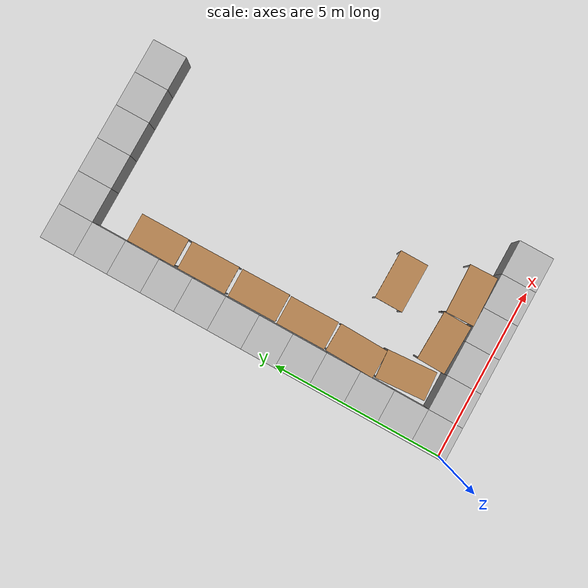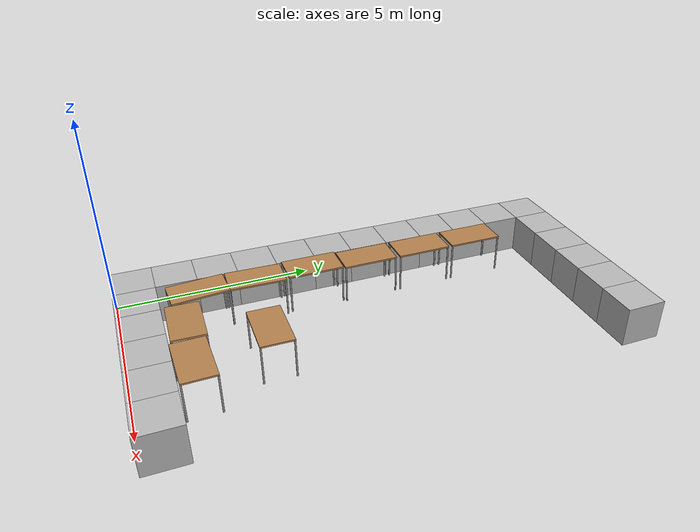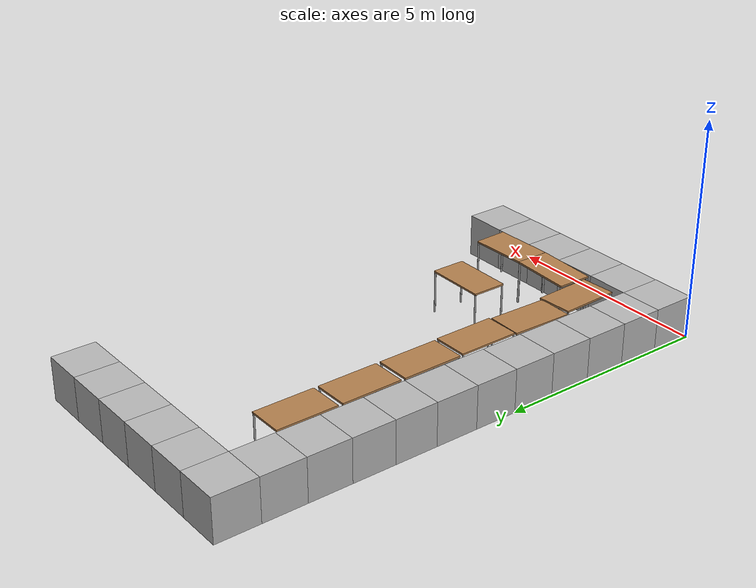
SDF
<sdf version="1.6">
 <world name="default">
  <model name="box_0_0">
   <pose>0.5 0.5 0.5 0 -0 0</pose>
   <static>1</static>
   <link name="link">
    <collision name="collision"><geometry><box><size>1 1 1</size></box></geometry></collision>
    <visual name="visual"><geometry><box><size>1 1 1</size></box></geometry></visual>
   </link>
  </model>
  <model name="box_0_1">
   <pose>0.5 1.5 0.5 0 -0 0</pose>
   <static>1</static>
   <link name="link">
    <collision name="collision"><geometry><box><size>1 1 1</size></box></geometry></collision>
    <visual name="visual"><geometry><box><size>1 1 1</size></box></geometry></visual>
   </link>
  </model>
  <model name="box_0_2">
   <pose>0.5 2.5 0.5 0 -0 0</pose>
   <static>1</static>
   <link name="link">
    <collision name="collision"><geometry><box><size>1 1 1</size></box></geometry></collision>
    <visual name="visual"><geometry><box><size>1 1 1</size></box></geometry></visual>
   </link>
  </model>
  <model name="box_0_3">
   <pose>0.5 3.5 0.5 0 -0 0</pose>
   <static>1</static>
   <link name="link">
    <collision name="collision"><geometry><box><size>1 1 1</size></box></geometry></collision>
    <visual name="visual"><geometry><box><size>1 1 1</size></box></geometry></visual>
   </link>
  </model>
  <model name="box_0_4">
   <pose>0.5 4.5 0.5 0 -0 0</pose>
   <static>1</static>
   <link name="link">
    <collision name="collision"><geometry><box><size>1 1 1</size></box></geometry></collision>
    <visual name="visual"><geometry><box><size>1 1 1</size></box></geometry></visual>
   </link>
  </model>
  <model name="box_0_5">
   <pose>0.5 5.5 0.5 0 -0 0</pose>
   <static>1</static>
   <link name="link">
    <collision name="collision"><geometry><box><size>1 1 1</size></box></geometry></collision>
    <visual name="visual"><geometry><box><size>1 1 1</size></box></geometry></visual>
   </link>
  </model>
  <model name="box_0_6">
   <pose>0.5 6.5 0.5 0 -0 0</pose>
   <static>1</static>
   <link name="link">
    <collision name="collision"><geometry><box><size>1 1 1</size></box></geometry></collision>
    <visual name="visual"><geometry><box><size>1 1 1</size></box></geometry></visual>
   </link>
  </model>
  <model name="box_0_7">
   <pose>0.5 7.5 0.5 0 -0 0</pose>
   <static>1</static>
   <link name="link">
    <collision name="collision"><geometry><box><size>1 1 1</size></box></geometry></collision>
    <visual name="visual"><geometry><box><size>1 1 1</size></box></geometry></visual>
   </link>
  </model>
  <model name="box_0_8">
   <pose>0.5 8.5 0.5 0 -0 0</pose>
   <static>1</static>
   <link name="link">
    <collision name="collision"><geometry><box><size>1 1 1</size></box></geometry></collision>
    <visual name="visual"><geometry><box><size>1 1 1</size></box></geometry></visual>
   </link>
  </model>
  <model name="box_0_9">
   <pose>0.5 9.5 0.5 0 -0 0</pose>
   <static>1</static>
   <link name="link">
    <collision name="collision"><geometry><box><size>1 1 1</size></box></geometry></collision>
    <visual name="visual"><geometry><box><size>1 1 1</size></box></geometry></visual>
   </link>
  </model>
  <model name="box_0_10">
   <pose>0.5 10.5 0.5 0 -0 0</pose>
   <static>1</static>
   <link name="link">
    <collision name="collision"><geometry><box><size>1 1 1</size></box></geometry></collision>
    <visual name="visual"><geometry><box><size>1 1 1</size></box></geometry></visual>
   </link>
  </model>
  <model name="box_0_11">
   <pose>0.5 11.5 0.5 0 -0 0</pose>
   <static>1</static>
   <link name="link">
    <collision name="collision"><geometry><box><size>1 1 1</size></box></geometry></collision>
    <visual name="visual"><geometry><box><size>1 1 1</size></box></geometry></visual>
   </link>
  </model>
  <model name="box_1_0">
   <pose>1.5 0.5 0.5 0 -0 0</pose>
   <static>1</static>
   <link name="link">
    <collision name="collision"><geometry><box><size>1 1 1</size></box></geometry></collision>
    <visual name="visual"><geometry><box><size>1 1 1</size></box></geometry></visual>
   </link>
  </model>
  <model name="box_1_11">
   <pose>1.5 11.5 0.5 0 -0 0</pose>
   <static>1</static>
   <link name="link">
    <collision name="collision"><geometry><box><size>1 1 1</size></box></geometry></collision>
    <visual name="visual"><geometry><box><size>1 1 1</size></box></geometry></visual>
   </link>
  </model>
  <model name="box_2_0">
   <pose>2.5 0.5 0.5 0 -0 0</pose>
   <static>1</static>
   <link name="link">
    <collision name="collision"><geometry><box><size>1 1 1</size></box></geometry></collision>
    <visual name="visual"><geometry><box><size>1 1 1</size></box></geometry></visual>
   </link>
  </model>
  <model name="box_2_11">
   <pose>2.5 11.5 0.5 0 -0 0</pose>
   <static>1</static>
   <link name="link">
    <collision name="collision"><geometry><box><size>1 1 1</size></box></geometry></collision>
    <visual name="visual"><geometry><box><size>1 1 1</size></box></geometry></visual>
   </link>
  </model>
  <model name="box_3_0">
   <pose>3.5 0.5 0.5 0 -0 0</pose>
   <static>1</static>
   <link name="link">
    <collision name="collision"><geometry><box><size>1 1 1</size></box></geometry></collision>
    <visual name="visual"><geometry><box><size>1 1 1</size></box></geometry></visual>
   </link>
  </model>
  <model name="box_3_11">
   <pose>3.5 11.5 0.5 0 -0 0</pose>
   <static>1</static>
   <link name="link">
    <collision name="collision"><geometry><box><size>1 1 1</size></box></geometry></collision>
    <visual name="visual"><geometry><box><size>1 1 1</size></box></geometry></visual>
   </link>
  </model>
  <model name="box_4_0">
   <pose>4.5 0.5 0.5 0 -0 0</pose>
   <static>1</static>
   <link name="link">
    <collision name="collision"><geometry><box><size>1 1 1</size></box></geometry></collision>
    <visual name="visual"><geometry><box><size>1 1 1</size></box></geometry></visual>
   </link>
  </model>
  <model name="box_4_11">
   <pose>4.5 11.5 0.5 0 -0 0</pose>
   <static>1</static>
   <link name="link">
    <collision name="collision"><geometry><box><size>1 1 1</size></box></geometry></collision>
    <visual name="visual"><geometry><box><size>1 1 1</size></box></geometry></visual>
   </link>
  </model>
  <model name="box_5_0">
   <pose>5.5 0.5 0.5 0 -0 0</pose>
   <static>1</static>
   <link name="link">
    <collision name="collision"><geometry><box><size>1 1 1</size></box></geometry></collision>
    <visual name="visual"><geometry><box><size>1 1 1</size></box></geometry></visual>
   </link>
  </model>
  <model name="box_5_11">
   <pose>5.5 11.5 0.5 0 -0 0</pose>
   <static>1</static>
   <link name="link">
    <collision name="collision"><geometry><box><size>1 1 1</size></box></geometry></collision>
    <visual name="visual"><geometry><box><size>1 1 1</size></box></geometry></visual>
   </link>
  </model>
  <model name="table_0_clone_clone_1">
   <static>0</static>
   <link name="link">
    <collision name="surface">
     <pose>0 0 1 0 -0 0</pose>
     <geometry><box><size>1.5 0.8 0.03</size></box></geometry>
     <surface><friction><ode><mu>0.6</mu><mu2>0.6</mu2></ode></friction></surface>
    </collision>
    <visual name="visual1">
     <pose>0 0 1 0 -0 0</pose>
     <geometry><box><size>1.4 0.8 0.04</size></box></geometry>
     <material>
      <script><uri>file://media/materials/scripts/gazebo.material</uri><name>Gazebo/Wood</name></script>
     </material>
    </visual>
    <collision name="front_left_leg">
     <pose>0.68 0.38 0.5 0 -0 0</pose>
     <geometry><cylinder><radius>0.02</radius><length>1</length></cylinder></geometry>
    </collision>
    <visual name="front_left_leg">
     <pose>0.68 0.38 0.5 0 -0 0</pose>
     <geometry><cylinder><radius>0.02</radius><length>1</length></cylinder></geometry>
     <material>
      <script><uri>file://media/materials/scripts/gazebo.material</uri><name>Gazebo/Grey</name></script>
     </material>
    </visual>
    <collision name="front_right_leg">
     <pose>0.68 -0.38 0.5 0 -0 0</pose>
     <geometry><cylinder><radius>0.02</radius><length>1</length></cylinder></geometry>
    </collision>
    <visual name="front_right_leg">
     <pose>0.68 -0.38 0.5 0 -0 0</pose>
     <geometry><cylinder><radius>0.02</radius><length>1</length></cylinder></geometry>
     <material>
      <script><uri>file://media/materials/scripts/gazebo.material</uri><name>Gazebo/Grey</name></script>
     </material>
    </visual>
    <collision name="back_right_leg">
     <pose>-0.68 -0.38 0.5 0 -0 0</pose>
     <geometry><cylinder><radius>0.02</radius><length>1</length></cylinder></geometry>
    </collision>
    <visual name="back_right_leg">
     <pose>-0.68 -0.38 0.5 0 -0 0</pose>
     <geometry><cylinder><radius>0.02</radius><length>1</length></cylinder></geometry>
     <material>
      <script><uri>file://media/materials/scripts/gazebo.material</uri><name>Gazebo/Grey</name></script>
     </material>
    </visual>
    <collision name="back_left_leg">
     <pose>-0.68 0.38 0.5 0 -0 0</pose>
     <geometry><cylinder><radius>0.02</radius><length>1</length></cylinder></geometry>
    </collision>
    <visual name="back_left_leg">
     <pose>-0.68 0.38 0.5 0 -0 0</pose>
     <geometry><cylinder><radius>0.02</radius><length>1</length></cylinder></geometry>
     <material>
      <script><uri>file://media/materials/scripts/gazebo.material</uri><name>Gazebo/Grey</name></script>
     </material>
    </visual>
    <inertial>
     <inertia><ixx>1</ixx><ixy>0</ixy><ixz>0</ixz><iyy>1</iyy><iyz>0</iyz><izz>1</izz></inertia>
     <mass>1</mass>
    </inertial>
   </link>
   <pose>1.49275 1.95318 0.015881 0.002019 0.021604 -1.50473</pose>
  </model>
  <model name="table_0_clone_clone_2">
   <static>0</static>
   <link name="link">
    <collision name="surface">
     <pose>0 0 1 0 -0 0</pose>
     <geometry><box><size>1.5 0.8 0.03</size></box></geometry>
     <surface><friction><ode><mu>0.6</mu><mu2>0.6</mu2></ode></friction></surface>
    </collision>
    <visual name="visual1">
     <pose>0 0 1 0 -0 0</pose>
     <geometry><box><size>1.4 0.8 0.04</size></box></geometry>
     <material>
      <script><uri>file://media/materials/scripts/gazebo.material</uri><name>Gazebo/Wood</name></script>
     </material>
    </visual>
    <collision name="front_left_leg">
     <pose>0.68 0.38 0.5 0 -0 0</pose>
     <geometry><cylinder><radius>0.02</radius><length>1</length></cylinder></geometry>
    </collision>
    <visual name="front_left_leg">
     <pose>0.68 0.38 0.5 0 -0 0</pose>
     <geometry><cylinder><radius>0.02</radius><length>1</length></cylinder></geometry>
     <material>
      <script><uri>file://media/materials/scripts/gazebo.material</uri><name>Gazebo/Grey</name></script>
     </material>
    </visual>
    <collision name="front_right_leg">
     <pose>0.68 -0.38 0.5 0 -0 0</pose>
     <geometry><cylinder><radius>0.02</radius><length>1</length></cylinder></geometry>
    </collision>
    <visual name="front_right_leg">
     <pose>0.68 -0.38 0.5 0 -0 0</pose>
     <geometry><cylinder><radius>0.02</radius><length>1</length></cylinder></geometry>
     <material>
      <script><uri>file://media/materials/scripts/gazebo.material</uri><name>Gazebo/Grey</name></script>
     </material>
    </visual>
    <collision name="back_right_leg">
     <pose>-0.68 -0.38 0.5 0 -0 0</pose>
     <geometry><cylinder><radius>0.02</radius><length>1</length></cylinder></geometry>
    </collision>
    <visual name="back_right_leg">
     <pose>-0.68 -0.38 0.5 0 -0 0</pose>
     <geometry><cylinder><radius>0.02</radius><length>1</length></cylinder></geometry>
     <material>
      <script><uri>file://media/materials/scripts/gazebo.material</uri><name>Gazebo/Grey</name></script>
     </material>
    </visual>
    <collision name="back_left_leg">
     <pose>-0.68 0.38 0.5 0 -0 0</pose>
     <geometry><cylinder><radius>0.02</radius><length>1</length></cylinder></geometry>
    </collision>
    <visual name="back_left_leg">
     <pose>-0.68 0.38 0.5 0 -0 0</pose>
     <geometry><cylinder><radius>0.02</radius><length>1</length></cylinder></geometry>
     <material>
      <script><uri>file://media/materials/scripts/gazebo.material</uri><name>Gazebo/Grey</name></script>
     </material>
    </visual>
    <inertial>
     <inertia><ixx>1</ixx><ixy>0</ixy><ixz>0</ixz><iyy>1</iyy><iyz>0</iyz><izz>1</izz></inertia>
     <mass>1</mass>
    </inertial>
   </link>
   <pose>1.42119 3.346 -1e-06 -3e-06 0 -1.59927</pose>
  </model>
  <model name="table_0_clone_clone_2_clone">
   <static>0</static>
   <link name="link">
    <collision name="surface">
     <pose>0 0 1 0 -0 0</pose>
     <geometry><box><size>1.5 0.8 0.03</size></box></geometry>
     <surface><friction><ode><mu>0.6</mu><mu2>0.6</mu2></ode></friction></surface>
    </collision>
    <visual name="visual1">
     <pose>0 0 1 0 -0 0</pose>
     <geometry><box><size>1.4 0.8 0.04</size></box></geometry>
     <material>
      <script><uri>file://media/materials/scripts/gazebo.material</uri><name>Gazebo/Wood</name></script>
     </material>
    </visual>
    <collision name="front_left_leg">
     <pose>0.68 0.38 0.5 0 -0 0</pose>
     <geometry><cylinder><radius>0.02</radius><length>1</length></cylinder></geometry>
    </collision>
    <visual name="front_left_leg">
     <pose>0.68 0.38 0.5 0 -0 0</pose>
     <geometry><cylinder><radius>0.02</radius><length>1</length></cylinder></geometry>
     <material>
      <script><uri>file://media/materials/scripts/gazebo.material</uri><name>Gazebo/Grey</name></script>
     </material>
    </visual>
    <collision name="front_right_leg">
     <pose>0.68 -0.38 0.5 0 -0 0</pose>
     <geometry><cylinder><radius>0.02</radius><length>1</length></cylinder></geometry>
    </collision>
    <visual name="front_right_leg">
     <pose>0.68 -0.38 0.5 0 -0 0</pose>
     <geometry><cylinder><radius>0.02</radius><length>1</length></cylinder></geometry>
     <material>
      <script><uri>file://media/materials/scripts/gazebo.material</uri><name>Gazebo/Grey</name></script>
     </material>
    </visual>
    <collision name="back_right_leg">
     <pose>-0.68 -0.38 0.5 0 -0 0</pose>
     <geometry><cylinder><radius>0.02</radius><length>1</length></cylinder></geometry>
    </collision>
    <visual name="back_right_leg">
     <pose>-0.68 -0.38 0.5 0 -0 0</pose>
     <geometry><cylinder><radius>0.02</radius><length>1</length></cylinder></geometry>
     <material>
      <script><uri>file://media/materials/scripts/gazebo.material</uri><name>Gazebo/Grey</name></script>
     </material>
    </visual>
    <collision name="back_left_leg">
     <pose>-0.68 0.38 0.5 0 -0 0</pose>
     <geometry><cylinder><radius>0.02</radius><length>1</length></cylinder></geometry>
    </collision>
    <visual name="back_left_leg">
     <pose>-0.68 0.38 0.5 0 -0 0</pose>
     <geometry><cylinder><radius>0.02</radius><length>1</length></cylinder></geometry>
     <material>
      <script><uri>file://media/materials/scripts/gazebo.material</uri><name>Gazebo/Grey</name></script>
     </material>
    </visual>
    <inertial>
     <inertia><ixx>1</ixx><ixy>0</ixy><ixz>0</ixz><iyy>1</iyy><iyz>0</iyz><izz>1</izz></inertia>
     <mass>1</mass>
    </inertial>
   </link>
   <pose>1.43437 4.80851 0.029983 -1.8e-05 -1.9e-05 -1.5659</pose>
  </model>
  <model name="table_0_clone_clone_2_clone_0">
   <static>0</static>
   <link name="link">
    <collision name="surface">
     <pose>0 0 1 0 -0 0</pose>
     <geometry><box><size>1.5 0.8 0.03</size></box></geometry>
     <surface><friction><ode><mu>0.6</mu><mu2>0.6</mu2></ode></friction></surface>
    </collision>
    <visual name="visual1">
     <pose>0 0 1 0 -0 0</pose>
     <geometry><box><size>1.4 0.8 0.04</size></box></geometry>
     <material>
      <script><uri>file://media/materials/scripts/gazebo.material</uri><name>Gazebo/Wood</name></script>
     </material>
    </visual>
    <collision name="front_left_leg">
     <pose>0.68 0.38 0.5 0 -0 0</pose>
     <geometry><cylinder><radius>0.02</radius><length>1</length></cylinder></geometry>
    </collision>
    <visual name="front_left_leg">
     <pose>0.68 0.38 0.5 0 -0 0</pose>
     <geometry><cylinder><radius>0.02</radius><length>1</length></cylinder></geometry>
     <material>
      <script><uri>file://media/materials/scripts/gazebo.material</uri><name>Gazebo/Grey</name></script>
     </material>
    </visual>
    <collision name="front_right_leg">
     <pose>0.68 -0.38 0.5 0 -0 0</pose>
     <geometry><cylinder><radius>0.02</radius><length>1</length></cylinder></geometry>
    </collision>
    <visual name="front_right_leg">
     <pose>0.68 -0.38 0.5 0 -0 0</pose>
     <geometry><cylinder><radius>0.02</radius><length>1</length></cylinder></geometry>
     <material>
      <script><uri>file://media/materials/scripts/gazebo.material</uri><name>Gazebo/Grey</name></script>
     </material>
    </visual>
    <collision name="back_right_leg">
     <pose>-0.68 -0.38 0.5 0 -0 0</pose>
     <geometry><cylinder><radius>0.02</radius><length>1</length></cylinder></geometry>
    </collision>
    <visual name="back_right_leg">
     <pose>-0.68 -0.38 0.5 0 -0 0</pose>
     <geometry><cylinder><radius>0.02</radius><length>1</length></cylinder></geometry>
     <material>
      <script><uri>file://media/materials/scripts/gazebo.material</uri><name>Gazebo/Grey</name></script>
     </material>
    </visual>
    <collision name="back_left_leg">
     <pose>-0.68 0.38 0.5 0 -0 0</pose>
     <geometry><cylinder><radius>0.02</radius><length>1</length></cylinder></geometry>
    </collision>
    <visual name="back_left_leg">
     <pose>-0.68 0.38 0.5 0 -0 0</pose>
     <geometry><cylinder><radius>0.02</radius><length>1</length></cylinder></geometry>
     <material>
      <script><uri>file://media/materials/scripts/gazebo.material</uri><name>Gazebo/Grey</name></script>
     </material>
    </visual>
    <inertial>
     <inertia><ixx>1</ixx><ixy>0</ixy><ixz>0</ixz><iyy>1</iyy><iyz>0</iyz><izz>1</izz></inertia>
     <mass>1</mass>
    </inertial>
   </link>
   <pose>1.44052 6.25894 -3.1e-05 -3e-06 9e-06 -1.56498</pose>
  </model>
  <model name="table_0_clone_clone_2_clone_1">
   <static>0</static>
   <link name="link">
    <collision name="surface">
     <pose>0 0 1 0 -0 0</pose>
     <geometry><box><size>1.5 0.8 0.03</size></box></geometry>
     <surface><friction><ode><mu>0.6</mu><mu2>0.6</mu2></ode></friction></surface>
    </collision>
    <visual name="visual1">
     <pose>0 0 1 0 -0 0</pose>
     <geometry><box><size>1.4 0.8 0.04</size></box></geometry>
     <material>
      <script><uri>file://media/materials/scripts/gazebo.material</uri><name>Gazebo/Wood</name></script>
     </material>
    </visual>
    <collision name="front_left_leg">
     <pose>0.68 0.38 0.5 0 -0 0</pose>
     <geometry><cylinder><radius>0.02</radius><length>1</length></cylinder></geometry>
    </collision>
    <visual name="front_left_leg">
     <pose>0.68 0.38 0.5 0 -0 0</pose>
     <geometry><cylinder><radius>0.02</radius><length>1</length></cylinder></geometry>
     <material>
      <script><uri>file://media/materials/scripts/gazebo.material</uri><name>Gazebo/Grey</name></script>
     </material>
    </visual>
    <collision name="front_right_leg">
     <pose>0.68 -0.38 0.5 0 -0 0</pose>
     <geometry><cylinder><radius>0.02</radius><length>1</length></cylinder></geometry>
    </collision>
    <visual name="front_right_leg">
     <pose>0.68 -0.38 0.5 0 -0 0</pose>
     <geometry><cylinder><radius>0.02</radius><length>1</length></cylinder></geometry>
     <material>
      <script><uri>file://media/materials/scripts/gazebo.material</uri><name>Gazebo/Grey</name></script>
     </material>
    </visual>
    <collision name="back_right_leg">
     <pose>-0.68 -0.38 0.5 0 -0 0</pose>
     <geometry><cylinder><radius>0.02</radius><length>1</length></cylinder></geometry>
    </collision>
    <visual name="back_right_leg">
     <pose>-0.68 -0.38 0.5 0 -0 0</pose>
     <geometry><cylinder><radius>0.02</radius><length>1</length></cylinder></geometry>
     <material>
      <script><uri>file://media/materials/scripts/gazebo.material</uri><name>Gazebo/Grey</name></script>
     </material>
    </visual>
    <collision name="back_left_leg">
     <pose>-0.68 0.38 0.5 0 -0 0</pose>
     <geometry><cylinder><radius>0.02</radius><length>1</length></cylinder></geometry>
    </collision>
    <visual name="back_left_leg">
     <pose>-0.68 0.38 0.5 0 -0 0</pose>
     <geometry><cylinder><radius>0.02</radius><length>1</length></cylinder></geometry>
     <material>
      <script><uri>file://media/materials/scripts/gazebo.material</uri><name>Gazebo/Grey</name></script>
     </material>
    </visual>
    <inertial>
     <inertia><ixx>1</ixx><ixy>0</ixy><ixz>0</ixz><iyy>1</iyy><iyz>0</iyz><izz>1</izz></inertia>
     <mass>1</mass>
    </inertial>
   </link>
   <pose>1.43271 7.75893 -0.000706 0 0 -1.56495</pose>
  </model>
  <model name="table_0_clone_clone_2_clone_1_clone">
   <static>0</static>
   <link name="link">
    <collision name="surface">
     <pose>0 0 1 0 -0 0</pose>
     <geometry><box><size>1.5 0.8 0.03</size></box></geometry>
     <surface><friction><ode><mu>0.6</mu><mu2>0.6</mu2></ode></friction></surface>
    </collision>
    <visual name="visual1">
     <pose>0 0 1 0 -0 0</pose>
     <geometry><box><size>1.4 0.8 0.04</size></box></geometry>
     <material>
      <script><uri>file://media/materials/scripts/gazebo.material</uri><name>Gazebo/Wood</name></script>
     </material>
    </visual>
    <collision name="front_left_leg">
     <pose>0.68 0.38 0.5 0 -0 0</pose>
     <geometry><cylinder><radius>0.02</radius><length>1</length></cylinder></geometry>
    </collision>
    <visual name="front_left_leg">
     <pose>0.68 0.38 0.5 0 -0 0</pose>
     <geometry><cylinder><radius>0.02</radius><length>1</length></cylinder></geometry>
     <material>
      <script><uri>file://media/materials/scripts/gazebo.material</uri><name>Gazebo/Grey</name></script>
     </material>
    </visual>
    <collision name="front_right_leg">
     <pose>0.68 -0.38 0.5 0 -0 0</pose>
     <geometry><cylinder><radius>0.02</radius><length>1</length></cylinder></geometry>
    </collision>
    <visual name="front_right_leg">
     <pose>0.68 -0.38 0.5 0 -0 0</pose>
     <geometry><cylinder><radius>0.02</radius><length>1</length></cylinder></geometry>
     <material>
      <script><uri>file://media/materials/scripts/gazebo.material</uri><name>Gazebo/Grey</name></script>
     </material>
    </visual>
    <collision name="back_right_leg">
     <pose>-0.68 -0.38 0.5 0 -0 0</pose>
     <geometry><cylinder><radius>0.02</radius><length>1</length></cylinder></geometry>
    </collision>
    <visual name="back_right_leg">
     <pose>-0.68 -0.38 0.5 0 -0 0</pose>
     <geometry><cylinder><radius>0.02</radius><length>1</length></cylinder></geometry>
     <material>
      <script><uri>file://media/materials/scripts/gazebo.material</uri><name>Gazebo/Grey</name></script>
     </material>
    </visual>
    <collision name="back_left_leg">
     <pose>-0.68 0.38 0.5 0 -0 0</pose>
     <geometry><cylinder><radius>0.02</radius><length>1</length></cylinder></geometry>
    </collision>
    <visual name="back_left_leg">
     <pose>-0.68 0.38 0.5 0 -0 0</pose>
     <geometry><cylinder><radius>0.02</radius><length>1</length></cylinder></geometry>
     <material>
      <script><uri>file://media/materials/scripts/gazebo.material</uri><name>Gazebo/Grey</name></script>
     </material>
    </visual>
    <inertial>
     <inertia><ixx>1</ixx><ixy>0</ixy><ixz>0</ixz><iyy>1</iyy><iyz>0</iyz><izz>1</izz></inertia>
     <mass>1</mass>
    </inertial>
   </link>
   <pose>1.42679 9.26055 -2e-06 0 0 -1.56904</pose>
  </model>
  <model name="table_clone_0_clone">
   <static>0</static>
   <link name="link">
    <collision name="surface">
     <pose>0 0 1 0 -0 0</pose>
     <geometry><box><size>1.5 0.8 0.03</size></box></geometry>
     <surface><friction><ode><mu>0.6</mu><mu2>0.6</mu2></ode></friction></surface>
    </collision>
    <visual name="visual1">
     <pose>0 0 1 0 -0 0</pose>
     <geometry><box><size>1.4 0.8 0.04</size></box></geometry>
     <material>
      <script><uri>file://media/materials/scripts/gazebo.material</uri><name>Gazebo/Wood</name></script>
     </material>
    </visual>
    <collision name="front_left_leg">
     <pose>0.68 0.38 0.5 0 -0 0</pose>
     <geometry><cylinder><radius>0.02</radius><length>1</length></cylinder></geometry>
    </collision>
    <visual name="front_left_leg">
     <pose>0.68 0.38 0.5 0 -0 0</pose>
     <geometry><cylinder><radius>0.02</radius><length>1</length></cylinder></geometry>
     <material>
      <script><uri>file://media/materials/scripts/gazebo.material</uri><name>Gazebo/Grey</name></script>
     </material>
    </visual>
    <collision name="front_right_leg">
     <pose>0.68 -0.38 0.5 0 -0 0</pose>
     <geometry><cylinder><radius>0.02</radius><length>1</length></cylinder></geometry>
    </collision>
    <visual name="front_right_leg">
     <pose>0.68 -0.38 0.5 0 -0 0</pose>
     <geometry><cylinder><radius>0.02</radius><length>1</length></cylinder></geometry>
     <material>
      <script><uri>file://media/materials/scripts/gazebo.material</uri><name>Gazebo/Grey</name></script>
     </material>
    </visual>
    <collision name="back_right_leg">
     <pose>-0.68 -0.38 0.5 0 -0 0</pose>
     <geometry><cylinder><radius>0.02</radius><length>1</length></cylinder></geometry>
    </collision>
    <visual name="back_right_leg">
     <pose>-0.68 -0.38 0.5 0 -0 0</pose>
     <geometry><cylinder><radius>0.02</radius><length>1</length></cylinder></geometry>
     <material>
      <script><uri>file://media/materials/scripts/gazebo.material</uri><name>Gazebo/Grey</name></script>
     </material>
    </visual>
    <collision name="back_left_leg">
     <pose>-0.68 0.38 0.5 0 -0 0</pose>
     <geometry><cylinder><radius>0.02</radius><length>1</length></cylinder></geometry>
    </collision>
    <visual name="back_left_leg">
     <pose>-0.68 0.38 0.5 0 -0 0</pose>
     <geometry><cylinder><radius>0.02</radius><length>1</length></cylinder></geometry>
     <material>
      <script><uri>file://media/materials/scripts/gazebo.material</uri><name>Gazebo/Grey</name></script>
     </material>
    </visual>
    <inertial>
     <inertia><ixx>1</ixx><ixy>0</ixy><ixz>0</ixz><iyy>1</iyy><iyz>0</iyz><izz>1</izz></inertia>
     <mass>1</mass>
    </inertial>
   </link>
   <pose>3.55881 3.19191 -3e-06 3e-06 -3e-06 -0.007666</pose>
  </model>
  <model name="table_clone_0_clone_clone">
   <static>0</static>
   <link name="link">
    <collision name="surface">
     <pose>0 0 1 0 -0 0</pose>
     <geometry><box><size>1.5 0.8 0.03</size></box></geometry>
     <surface><friction><ode><mu>0.6</mu><mu2>0.6</mu2></ode></friction></surface>
    </collision>
    <visual name="visual1">
     <pose>0 0 1 0 -0 0</pose>
     <geometry><box><size>1.4 0.8 0.04</size></box></geometry>
     <material>
      <script><uri>file://media/materials/scripts/gazebo.material</uri><name>Gazebo/Wood</name></script>
     </material>
    </visual>
    <collision name="front_left_leg">
     <pose>0.68 0.38 0.5 0 -0 0</pose>
     <geometry><cylinder><radius>0.02</radius><length>1</length></cylinder></geometry>
    </collision>
    <visual name="front_left_leg">
     <pose>0.68 0.38 0.5 0 -0 0</pose>
     <geometry><cylinder><radius>0.02</radius><length>1</length></cylinder></geometry>
     <material>
      <script><uri>file://media/materials/scripts/gazebo.material</uri><name>Gazebo/Grey</name></script>
     </material>
    </visual>
    <collision name="front_right_leg">
     <pose>0.68 -0.38 0.5 0 -0 0</pose>
     <geometry><cylinder><radius>0.02</radius><length>1</length></cylinder></geometry>
    </collision>
    <visual name="front_right_leg">
     <pose>0.68 -0.38 0.5 0 -0 0</pose>
     <geometry><cylinder><radius>0.02</radius><length>1</length></cylinder></geometry>
     <material>
      <script><uri>file://media/materials/scripts/gazebo.material</uri><name>Gazebo/Grey</name></script>
     </material>
    </visual>
    <collision name="back_right_leg">
     <pose>-0.68 -0.38 0.5 0 -0 0</pose>
     <geometry><cylinder><radius>0.02</radius><length>1</length></cylinder></geometry>
    </collision>
    <visual name="back_right_leg">
     <pose>-0.68 -0.38 0.5 0 -0 0</pose>
     <geometry><cylinder><radius>0.02</radius><length>1</length></cylinder></geometry>
     <material>
      <script><uri>file://media/materials/scripts/gazebo.material</uri><name>Gazebo/Grey</name></script>
     </material>
    </visual>
    <collision name="back_left_leg">
     <pose>-0.68 0.38 0.5 0 -0 0</pose>
     <geometry><cylinder><radius>0.02</radius><length>1</length></cylinder></geometry>
    </collision>
    <visual name="back_left_leg">
     <pose>-0.68 0.38 0.5 0 -0 0</pose>
     <geometry><cylinder><radius>0.02</radius><length>1</length></cylinder></geometry>
     <material>
      <script><uri>file://media/materials/scripts/gazebo.material</uri><name>Gazebo/Grey</name></script>
     </material>
    </visual>
    <inertial>
     <inertia><ixx>1</ixx><ixy>0</ixy><ixz>0</ixz><iyy>1</iyy><iyz>0</iyz><izz>1</izz></inertia>
     <mass>1</mass>
    </inertial>
   </link>
   <pose>2.72025 1.46459 0.015513 1.5e-05 -0.022176 -0.02689</pose>
  </model>
  <model name="table_clone_0_clone_clone_0">
   <static>0</static>
   <link name="link">
    <collision name="surface">
     <pose>0 0 1 0 -0 0</pose>
     <geometry><box><size>1.5 0.8 0.03</size></box></geometry>
     <surface><friction><ode><mu>0.6</mu><mu2>0.6</mu2></ode></friction></surface>
    </collision>
    <visual name="visual1">
     <pose>0 0 1 0 -0 0</pose>
     <geometry><box><size>1.4 0.8 0.04</size></box></geometry>
     <material>
      <script><uri>file://media/materials/scripts/gazebo.material</uri><name>Gazebo/Wood</name></script>
     </material>
    </visual>
    <collision name="front_left_leg">
     <pose>0.68 0.38 0.5 0 -0 0</pose>
     <geometry><cylinder><radius>0.02</radius><length>1</length></cylinder></geometry>
    </collision>
    <visual name="front_left_leg">
     <pose>0.68 0.38 0.5 0 -0 0</pose>
     <geometry><cylinder><radius>0.02</radius><length>1</length></cylinder></geometry>
     <material>
      <script><uri>file://media/materials/scripts/gazebo.material</uri><name>Gazebo/Grey</name></script>
     </material>
    </visual>
    <collision name="front_right_leg">
     <pose>0.68 -0.38 0.5 0 -0 0</pose>
     <geometry><cylinder><radius>0.02</radius><length>1</length></cylinder></geometry>
    </collision>
    <visual name="front_right_leg">
     <pose>0.68 -0.38 0.5 0 -0 0</pose>
     <geometry><cylinder><radius>0.02</radius><length>1</length></cylinder></geometry>
     <material>
      <script><uri>file://media/materials/scripts/gazebo.material</uri><name>Gazebo/Grey</name></script>
     </material>
    </visual>
    <collision name="back_right_leg">
     <pose>-0.68 -0.38 0.5 0 -0 0</pose>
     <geometry><cylinder><radius>0.02</radius><length>1</length></cylinder></geometry>
    </collision>
    <visual name="back_right_leg">
     <pose>-0.68 -0.38 0.5 0 -0 0</pose>
     <geometry><cylinder><radius>0.02</radius><length>1</length></cylinder></geometry>
     <material>
      <script><uri>file://media/materials/scripts/gazebo.material</uri><name>Gazebo/Grey</name></script>
     </material>
    </visual>
    <collision name="back_left_leg">
     <pose>-0.68 0.38 0.5 0 -0 0</pose>
     <geometry><cylinder><radius>0.02</radius><length>1</length></cylinder></geometry>
    </collision>
    <visual name="back_left_leg">
     <pose>-0.68 0.38 0.5 0 -0 0</pose>
     <geometry><cylinder><radius>0.02</radius><length>1</length></cylinder></geometry>
     <material>
      <script><uri>file://media/materials/scripts/gazebo.material</uri><name>Gazebo/Grey</name></script>
     </material>
    </visual>
    <inertial>
     <inertia><ixx>1</ixx><ixy>0</ixy><ixz>0</ixz><iyy>1</iyy><iyz>0</iyz><izz>1</izz></inertia>
     <mass>1</mass>
    </inertial>
   </link>
   <pose>4.13033 1.41771 3e-06 -4.1e-05 -1e-05 0.023822</pose>
  </model>
 </world>
</sdf>
